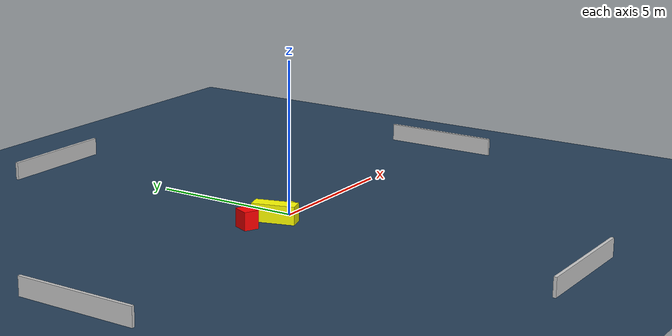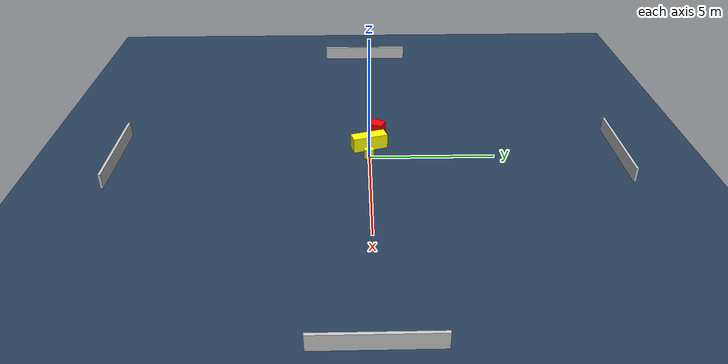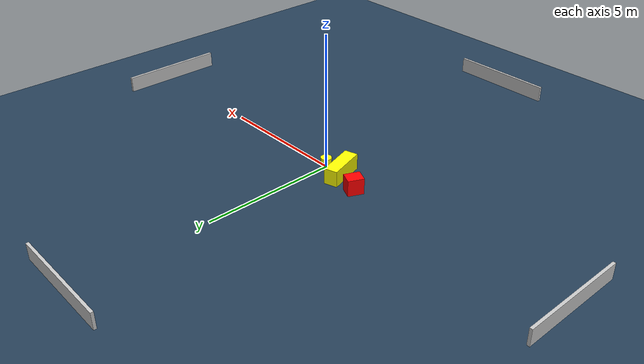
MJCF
<?xml version="1.0" ?>
<mujoco model="generated_environment">
  <option timestep="0.01" integrator="RK4" cone="elliptic"/>
  <default>
    <geom density="1"/>
  </default>
  <asset>
    <texture builtin="gradient" height="3072" name="skybox" rgb1="0.3 0.5 0.7" rgb2="0 0 0" type="skybox" width="512"/>
    <texture builtin="checker" height="300" name="groundplane" rgb1="0.2 0.3 0.4" rgb2="0.1 0.2 0.3" type="2d" width="300"/>
    <material name="groundplane" reflectance="0.2" texrepeat="5 5" texture="groundplane"/>
  </asset>
  <worldbody>
    <light dir="0 0 -1" directional="true" pos="0 0 1.5"/>
    <geom condim="3" friction="0.5 0.005 0.001" material="groundplane" name="floor" pos="0 0 0" size="0 0 0.05" type="plane"/>
    <body name="walls">
      <geom name="wall_1" condim="4" pos="-10.0 0.0 0.3" rgba="0.800000011920929 0.800000011920929 0.800000011920929 1.0" size="0.05 2.0 0.3" type="box"/>
      <geom name="wall_2" condim="4" pos="10.0 0.0 0.3" rgba="0.800000011920929 0.800000011920929 0.800000011920929 1.0" size="0.05 2.0 0.3" type="box"/>
      <geom name="wall_3" condim="4" pos="0.0 -10.0 0.3" rgba="0.800000011920929 0.800000011920929 0.800000011920929 1.0" size="2.0 0.05 0.3" type="box"/>
      <geom name="wall_4" condim="4" pos="0.0 10.0 0.3" rgba="0.800000011920929 0.800000011920929 0.800000011920929 1.0" size="2.0 0.05 0.3" type="box"/>
    </body>
    <body name="robot">
      <joint name="joint_x" type="slide" pos="0 0 0" axis="1 0 0"/>
      <joint name="joint_y" type="slide" pos="0 0 0" axis="0 1 0"/>
      <geom name="robot" type="cylinder" pos="0.0 0.0 0.2" size="0.2 0.2 0.0" mass="5.0" friction="1.0 0.005 0.0001" condim="4" rgba="1.0 1.0 0.0 1.0"/>
    </body>
    <body name="obstacle_1_movable">
      <geom name="obstacle_1_movable" condim="4" pos="-0.7847938835655349 0.013210319798696211 0.3" euler="0 0 106.61534889042929" friction="0.0 0.005 0.001" rgba="1.0 1.0 0.0 1.0" size="0.7088266205786096 0.24605111741163604 0.3" type="box" mass="0.1"/>
      <joint type="free"/>
    </body>
    <body name="obstacle_2_static">
      <geom name="obstacle_2_static" condim="4" pos="-1.7921152898094446 0.37081529568624216 0.3" euler="0 0 245.56948511308968" friction="0.0 0.005 0.001" rgba="1.0 0.0 0.0 1.0" size="0.29138940968522803 0.24338287885906212 0.3" type="box"/>
    </body>
  </worldbody>
  <actuator>
    <motor name="actuator_x" joint="joint_x" gear="1" ctrlrange="-1 1"/>
    <motor name="actuator_y" joint="joint_y" gear="1" ctrlrange="-1 1"/>
  </actuator>
</mujoco>
